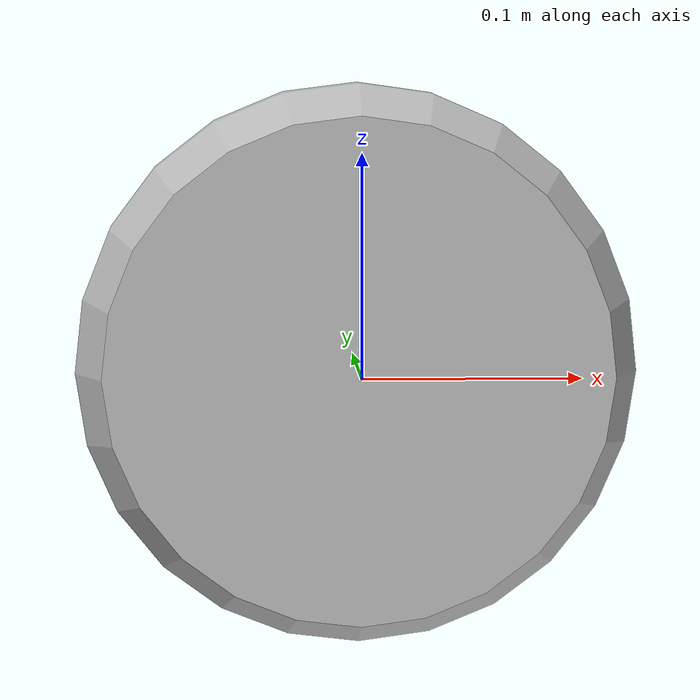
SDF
<?xml version="1.0" ?>
<sdf version="1.4">
  <model name="shelf2_plant2">
    <link name="body">
      <pose>0 0 0 0 0 0</pose>
      <inertial>
        <pose>  -0.000182   0.064290   0.001175 0 0 0</pose>
        <mass>0.5</mass>
        <inertia>
          <ixx>0.01</ixx>
          <ixy>0</ixy>
          <ixz>0</ixz>
          <iyy>0.01</iyy>
          <iyz>0</iyz>
          <izz>0.01</izz>
        </inertia>
      </inertial>
      <collision name="collision">
        <geometry>
          <mesh>
            <uri>model://bookshelf/shelf2_items/plant2/plant2.dae</uri>
          </mesh>
        </geometry>
      </collision>
      <visual name="visual">
        <geometry>
          <mesh>
            <uri>model://bookshelf/shelf2_items/plant2/plant2.dae</uri>
          </mesh>
        </geometry>
      </visual>
    </link>
  </model>
</sdf>
